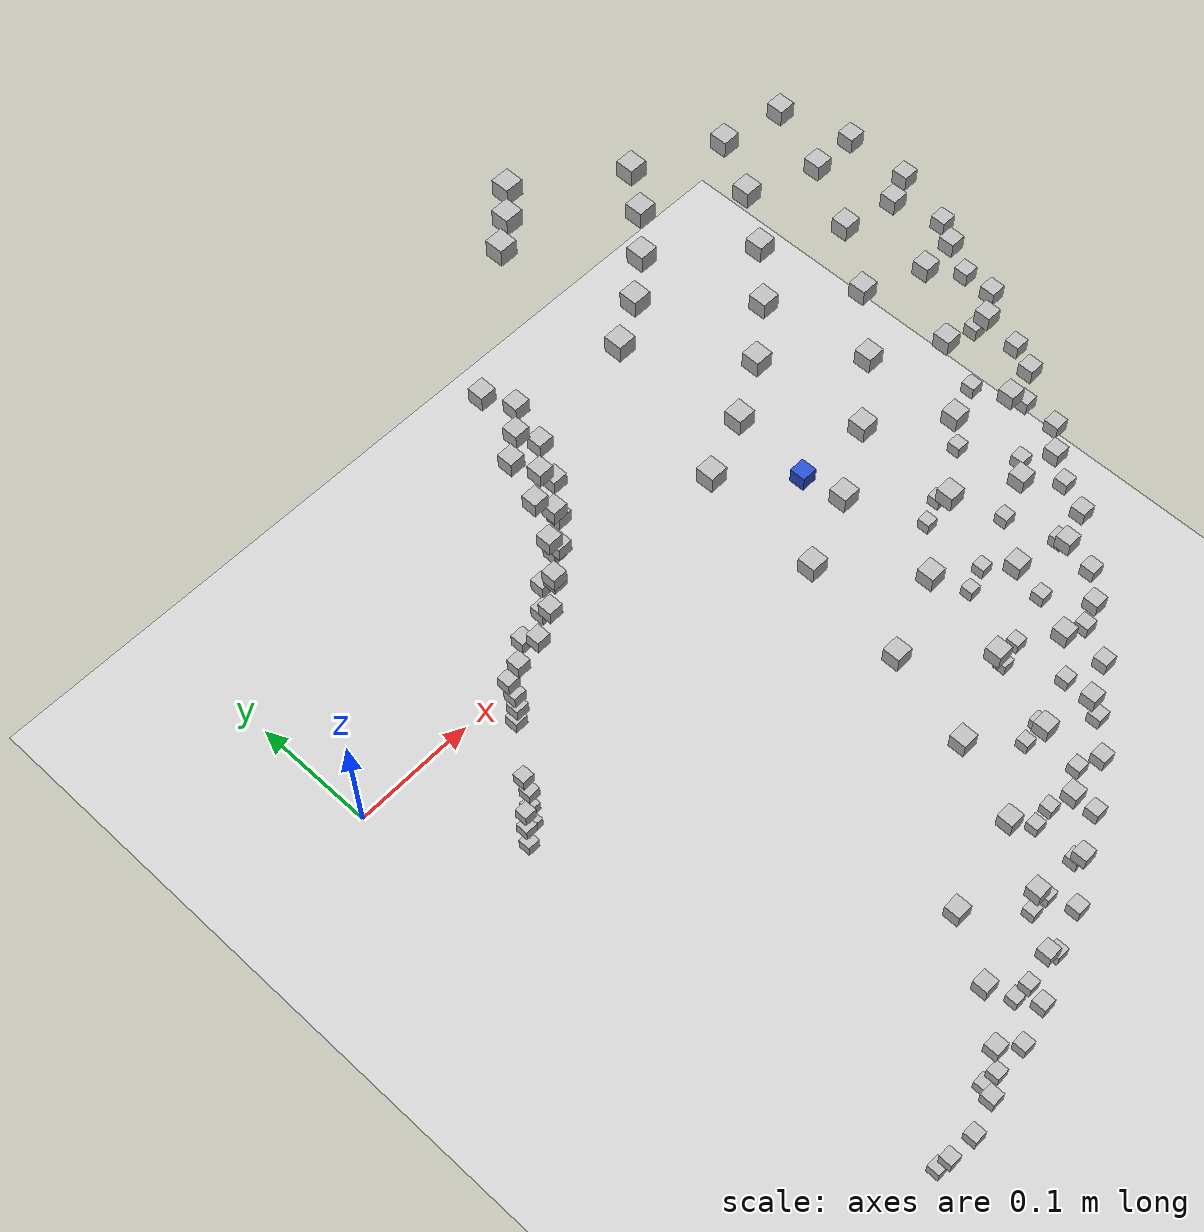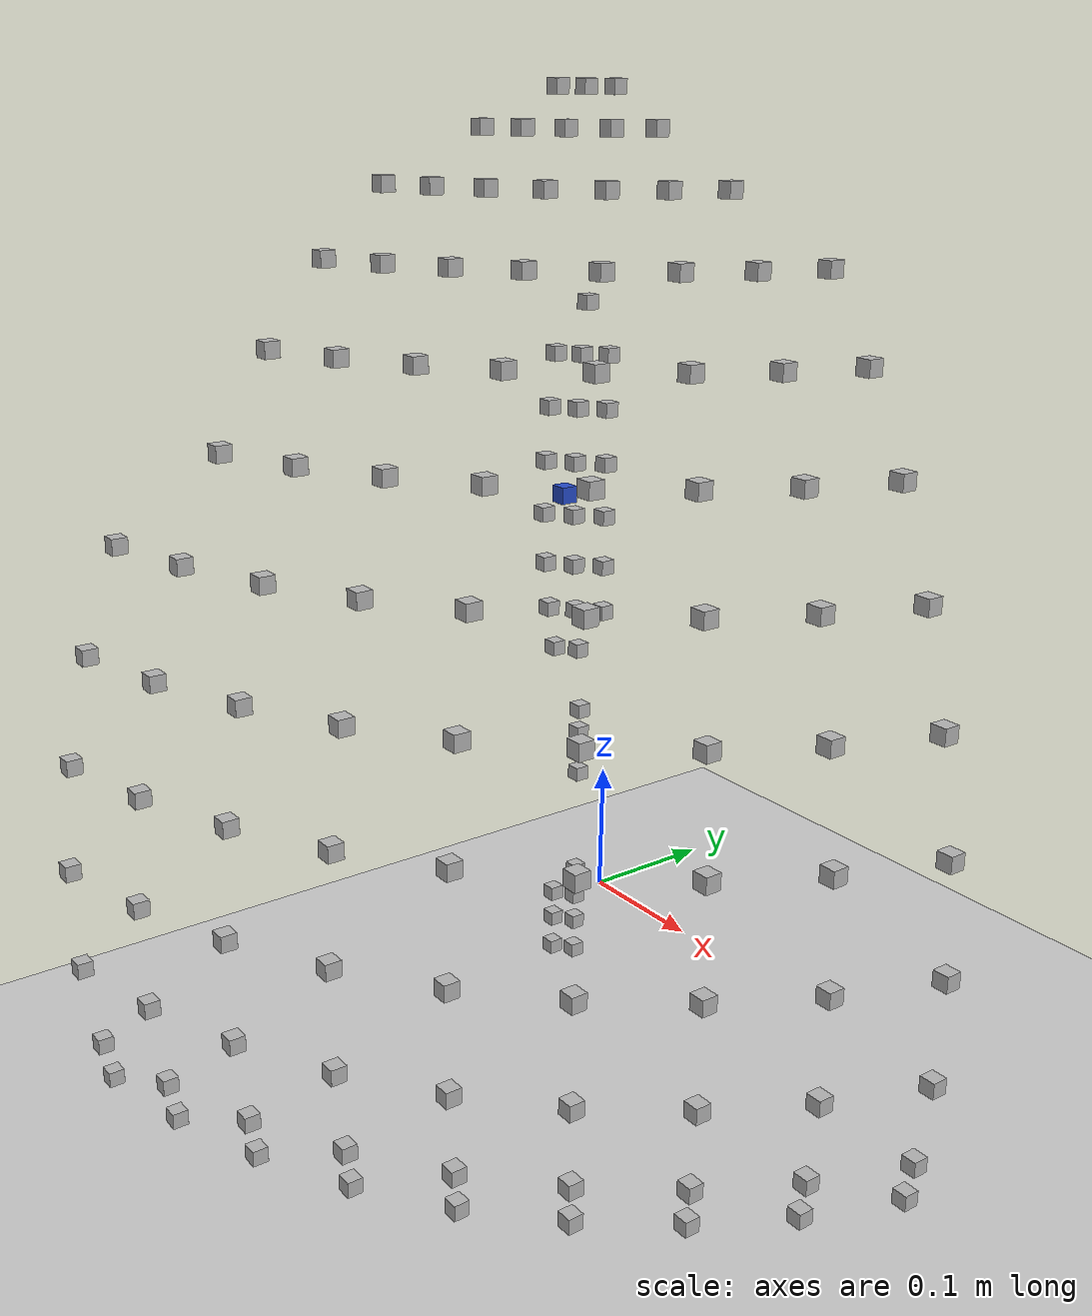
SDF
<sdf version="1.6">
 <world name="default">
  <model name="ground_plane">
   <static>1</static>
   <link name="link">
    <collision name="collision">
     <geometry><plane><normal>0 0 1</normal><size>100 100</size></plane></geometry>
     <surface>
      <contact><collide_bitmask>65535</collide_bitmask></contact>
      <friction><ode><mu>100</mu><mu2>50</mu2></ode></friction>
     </surface>
    </collision>
    <visual name="visual">
     <cast_shadows>0</cast_shadows>
     <geometry><plane><normal>0 0 1</normal><size>100 100</size></plane></geometry>
     <material>
      <script><uri>file://media/materials/scripts/gazebo.material</uri><name>Gazebo/Grey</name></script>
     </material>
    </visual>
   </link>
  </model>
  <model name="cube_blue">
   <static>1</static>
   <pose>0.2 -0.2 0.4 0.0 0.0 0.0</pose>
   <mass>1</mass>
   <link name="link1">
    <visual name="visual">
     <cast_shadows>0</cast_shadows>
     <geometry><box><size>0.01 0.01 0.01</size></box></geometry>
     <material>
      <script><uri>file://media/materials/scripts/gazebo.material</uri><name>Gazebo/Blue</name></script>
     </material>
    </visual>
   </link>
  </model>
  <model name="box_1685262135_6582217">
   <pose>0.0719161541215775 -0.4540607270147136 0.031024085780011867 0.0 0.0 0.0</pose>
   <static>1</static>
   <link name="box_1685262135_6582217_link">
    <visual name="visual"><geometry><box><size>0.01 0.01 0.01</size></box></geometry></visual>
   </link>
  </model>
  <model name="box_1685262135_658238">
   <pose>0.13440931045611512 -0.43963304505403183 0.031024085780011867 0.0 0.0 0.0</pose>
   <static>1</static>
   <link name="box_1685262135_658238_link">
    <visual name="visual"><geometry><box><size>0.01 0.01 0.01</size></box></geometry></visual>
   </link>
  </model>
  <model name="box_1685262135_6582541">
   <pose>0.19428634245094903 -0.4166484059465502 0.031024085780011867 0.0 0.0 0.0</pose>
   <static>1</static>
   <link name="box_1685262135_6582541_link">
    <visual name="visual"><geometry><box><size>0.01 0.01 0.01</size></box></geometry></visual>
   </link>
  </model>
  <model name="box_1685262135_6582701">
   <pose>0.25038181178741425 -0.38555417954785626 0.031024085780011867 0.0 0.0 0.0</pose>
   <static>1</static>
   <link name="box_1685262135_6582701_link">
    <visual name="visual"><geometry><box><size>0.01 0.01 0.01</size></box></geometry></visual>
   </link>
  </model>
  <model name="box_1685262135_6582887">
   <pose>0.301603883962527 -0.34695557960564244 0.031024085780011867 0.0 0.0 0.0</pose>
   <static>1</static>
   <link name="box_1685262135_6582887_link">
    <visual name="visual"><geometry><box><size>0.01 0.01 0.01</size></box></geometry></visual>
   </link>
  </model>
  <model name="box_1685262135_6583085">
   <pose>0.3469555796056425 -0.30160388396252696 0.031024085780011867 0.0 0.0 0.0</pose>
   <static>1</static>
   <link name="box_1685262135_6583085_link">
    <visual name="visual"><geometry><box><size>0.01 0.01 0.01</size></box></geometry></visual>
   </link>
  </model>
  <model name="box_1685262135_6583354">
   <pose>0.3855541795478563 -0.2503818117874142 0.031024085780011867 0.0 0.0 0.0</pose>
   <static>1</static>
   <link name="box_1685262135_6583354_link">
    <visual name="visual"><geometry><box><size>0.01 0.01 0.01</size></box></geometry></visual>
   </link>
  </model>
  <model name="box_1685262135_6583595">
   <pose>0.4166484059465502 -0.19428634245094903 0.031024085780011867 0.0 0.0 0.0</pose>
   <static>1</static>
   <link name="box_1685262135_6583595_link">
    <visual name="visual"><geometry><box><size>0.01 0.01 0.01</size></box></geometry></visual>
   </link>
  </model>
  <model name="box_1685262135_6583772">
   <pose>0.43963304505403183 -0.13440931045611512 0.031024085780011867 0.0 0.0 0.0</pose>
   <static>1</static>
   <link name="box_1685262135_6583772_link">
    <visual name="visual"><geometry><box><size>0.01 0.01 0.01</size></box></geometry></visual>
   </link>
  </model>
  <model name="box_1685262135_6589782">
   <pose>0.07278090152361238 -0.45952052723412273 0.05746253559996678 0.0 0.0 0.0</pose>
   <static>1</static>
   <link name="box_1685262135_6589782_link">
    <visual name="visual"><geometry><box><size>0.01 0.01 0.01</size></box></geometry></visual>
   </link>
  </model>
  <model name="box_1685262135_6589944">
   <pose>0.1360254995230351 -0.44491936129553256 0.05746253559996678 0.0 0.0 0.0</pose>
   <static>1</static>
   <link name="box_1685262135_6589944_link">
    <visual name="visual"><geometry><box><size>0.01 0.01 0.01</size></box></geometry></visual>
   </link>
  </model>
  <model name="box_1685262135_6590106">
   <pose>0.19662251590095434 -0.42165834607759733 0.05746253559996678 0.0 0.0 0.0</pose>
   <static>1</static>
   <link name="box_1685262135_6590106_link">
    <visual name="visual"><geometry><box><size>0.01 0.01 0.01</size></box></geometry></visual>
   </link>
  </model>
  <model name="box_1685262135_6590264">
   <pose>0.25339249866165847 -0.39019023078252135 0.05746253559996678 0.0 0.0 0.0</pose>
   <static>1</static>
   <link name="box_1685262135_6590264_link">
    <visual name="visual"><geometry><box><size>0.01 0.01 0.01</size></box></geometry></visual>
   </link>
  </model>
  <model name="box_1685262135_659043">
   <pose>0.30523048466560854 -0.35112750648007285 0.05746253559996678 0.0 0.0 0.0</pose>
   <static>1</static>
   <link name="box_1685262135_659043_link">
    <visual name="visual"><geometry><box><size>0.01 0.01 0.01</size></box></geometry></visual>
   </link>
  </model>
  <model name="box_1685262135_6590617">
   <pose>0.3511275064800729 -0.3052304846656085 0.05746253559996678 0.0 0.0 0.0</pose>
   <static>1</static>
   <link name="box_1685262135_6590617_link">
    <visual name="visual"><geometry><box><size>0.01 0.01 0.01</size></box></geometry></visual>
   </link>
  </model>
  <model name="box_1685262135_6590786">
   <pose>0.3901902307825214 -0.2533924986616584 0.05746253559996678 0.0 0.0 0.0</pose>
   <static>1</static>
   <link name="box_1685262135_6590786_link">
    <visual name="visual"><geometry><box><size>0.01 0.01 0.01</size></box></geometry></visual>
   </link>
  </model>
  <model name="box_1685262135_659095">
   <pose>0.42165834607759733 -0.19662251590095434 0.05746253559996678 0.0 0.0 0.0</pose>
   <static>1</static>
   <link name="box_1685262135_659095_link">
    <visual name="visual"><geometry><box><size>0.01 0.01 0.01</size></box></geometry></visual>
   </link>
  </model>
  <model name="box_1685262135_6591113">
   <pose>0.44491936129553256 -0.1360254995230351 0.05746253559996678 0.0 0.0 0.0</pose>
   <static>1</static>
   <link name="box_1685262135_6591113_link">
    <visual name="visual"><geometry><box><size>0.01 0.01 0.01</size></box></geometry></visual>
   </link>
  </model>
  <model name="box_1685262135_6597068">
   <pose>0.07431158038560051 -0.46918485321748127 0.11486971929344875 0.0 0.0 0.0</pose>
   <static>1</static>
   <link name="box_1685262135_6597068_link">
    <visual name="visual"><geometry><box><size>0.01 0.01 0.01</size></box></geometry></visual>
   </link>
  </model>
  <model name="box_1685262135_6597228">
   <pose>0.13888629613935258 -0.4542766053989651 0.11486971929344875 0.0 0.0 0.0</pose>
   <static>1</static>
   <link name="box_1685262135_6597228_link">
    <visual name="visual"><geometry><box><size>0.01 0.01 0.01</size></box></geometry></visual>
   </link>
  </model>
  <model name="box_1685262135_6597385">
   <pose>0.20075774811957245 -0.43052638018833794 0.11486971929344875 0.0 0.0 0.0</pose>
   <static>1</static>
   <link name="box_1685262135_6597385_link">
    <visual name="visual"><geometry><box><size>0.01 0.01 0.01</size></box></geometry></visual>
   </link>
  </model>
  <model name="box_1685262135_6597545">
   <pose>0.25872167889119874 -0.3983964487038438 0.11486971929344875 0.0 0.0 0.0</pose>
   <static>1</static>
   <link name="box_1685262135_6597545_link">
    <visual name="visual"><geometry><box><size>0.01 0.01 0.01</size></box></geometry></visual>
   </link>
  </model>
  <model name="box_1685262135_659771">
   <pose>0.3116498864747556 -0.3585121835145731 0.11486971929344875 0.0 0.0 0.0</pose>
   <static>1</static>
   <link name="box_1685262135_659771_link">
    <visual name="visual"><geometry><box><size>0.01 0.01 0.01</size></box></geometry></visual>
   </link>
  </model>
  <model name="box_1685262135_6597893">
   <pose>0.35851218351457315 -0.31164988647475556 0.11486971929344875 0.0 0.0 0.0</pose>
   <static>1</static>
   <link name="box_1685262135_6597893_link">
    <visual name="visual"><geometry><box><size>0.01 0.01 0.01</size></box></geometry></visual>
   </link>
  </model>
  <model name="box_1685262135_6598065">
   <pose>0.39839644870384383 -0.2587216788911987 0.11486971929344875 0.0 0.0 0.0</pose>
   <static>1</static>
   <link name="box_1685262135_6598065_link">
    <visual name="visual"><geometry><box><size>0.01 0.01 0.01</size></box></geometry></visual>
   </link>
  </model>
  <model name="box_1685262135_6598299">
   <pose>0.43052638018833794 -0.20075774811957245 0.11486971929344875 0.0 0.0 0.0</pose>
   <static>1</static>
   <link name="box_1685262135_6598299_link">
    <visual name="visual"><geometry><box><size>0.01 0.01 0.01</size></box></geometry></visual>
   </link>
  </model>
  <model name="box_1685262135_6598554">
   <pose>0.4542766053989651 -0.13888629613935258 0.11486971929344875 0.0 0.0 0.0</pose>
   <static>1</static>
   <link name="box_1685262135_6598554_link">
    <visual name="visual"><geometry><box><size>0.01 0.01 0.01</size></box></geometry></visual>
   </link>
  </model>
  <model name="box_1685262135_6604505">
   <pose>0.07470846816101515 -0.4716907040106615 0.18152491402812204 0.0 0.0 0.0</pose>
   <static>1</static>
   <link name="box_1685262135_6604505_link">
    <visual name="visual"><geometry><box><size>0.01 0.01 0.01</size></box></geometry></visual>
   </link>
  </model>
  <model name="box_1685262135_6604664">
   <pose>0.13962806845564968 -0.4567028333220446 0.18152491402812204 0.0 0.0 0.0</pose>
   <static>1</static>
   <link name="box_1685262135_6604664_link">
    <visual name="visual"><geometry><box><size>0.01 0.01 0.01</size></box></geometry></visual>
   </link>
  </model>
  <model name="box_1685262135_6604824">
   <pose>0.20182996722236882 -0.4328257614745873 0.18152491402812204 0.0 0.0 0.0</pose>
   <static>1</static>
   <link name="box_1685262135_6604824_link">
    <visual name="visual"><geometry><box><size>0.01 0.01 0.01</size></box></geometry></visual>
   </link>
  </model>
  <model name="box_1685262135_6604986">
   <pose>0.2601034752552896 -0.4005242285120337 0.18152491402812204 0.0 0.0 0.0</pose>
   <static>1</static>
   <link name="box_1685262135_6604986_link">
    <visual name="visual"><geometry><box><size>0.01 0.01 0.01</size></box></geometry></visual>
   </link>
  </model>
  <model name="box_1685262135_6605144">
   <pose>0.313314365005684 -0.3604269470310507 0.18152491402812204 0.0 0.0 0.0</pose>
   <static>1</static>
   <link name="box_1685262135_6605144_link">
    <visual name="visual"><geometry><box><size>0.01 0.01 0.01</size></box></geometry></visual>
   </link>
  </model>
  <model name="box_1685262135_66053">
   <pose>0.36042694703105077 -0.31331436500568394 0.18152491402812204 0.0 0.0 0.0</pose>
   <static>1</static>
   <link name="box_1685262135_66053_link">
    <visual name="visual"><geometry><box><size>0.01 0.01 0.01</size></box></geometry></visual>
   </link>
  </model>
  <model name="box_1685262135_6605477">
   <pose>0.40052422851203373 -0.26010347525528954 0.18152491402812204 0.0 0.0 0.0</pose>
   <static>1</static>
   <link name="box_1685262135_6605477_link">
    <visual name="visual"><geometry><box><size>0.01 0.01 0.01</size></box></geometry></visual>
   </link>
  </model>
  <model name="box_1685262135_6605644">
   <pose>0.4328257614745873 -0.20182996722236882 0.18152491402812204 0.0 0.0 0.0</pose>
   <static>1</static>
   <link name="box_1685262135_6605644_link">
    <visual name="visual"><geometry><box><size>0.01 0.01 0.01</size></box></geometry></visual>
   </link>
  </model>
  <model name="box_1685262135_6605804">
   <pose>0.4567028333220446 -0.13962806845564968 0.18152491402812204 0.0 0.0 0.0</pose>
   <static>1</static>
   <link name="box_1685262135_6605804_link">
    <visual name="visual"><geometry><box><size>0.01 0.01 0.01</size></box></geometry></visual>
   </link>
  </model>
  <model name="box_1685262135_6611705">
   <pose>0.07364907487674636 -0.46500195805747285 0.24785452819062248 0.0 0.0 0.0</pose>
   <static>1</static>
   <link name="box_1685262135_6611705_link">
    <visual name="visual"><geometry><box><size>0.01 0.01 0.01</size></box></geometry></visual>
   </link>
  </model>
  <model name="box_1685262135_6611862">
   <pose>0.13764809159815972 -0.45022662083318543 0.24785452819062248 0.0 0.0 0.0</pose>
   <static>1</static>
   <link name="box_1685262135_6611862_link">
    <visual name="visual"><geometry><box><size>0.01 0.01 0.01</size></box></geometry></visual>
   </link>
  </model>
  <model name="box_1685262135_6612024">
   <pose>0.1989679447889984 -0.4266881345595708 0.24785452819062248 0.0 0.0 0.0</pose>
   <static>1</static>
   <link name="box_1685262135_6612024_link">
    <visual name="visual"><geometry><box><size>0.01 0.01 0.01</size></box></geometry></visual>
   </link>
  </model>
  <model name="box_1685262135_6612184">
   <pose>0.256415113257202 -0.3948446490973134 0.24785452819062248 0.0 0.0 0.0</pose>
   <static>1</static>
   <link name="box_1685262135_6612184_link">
    <visual name="visual"><geometry><box><size>0.01 0.01 0.01</size></box></geometry></visual>
   </link>
  </model>
  <model name="box_1685262135_6612341">
   <pose>0.30887145321372245 -0.35531596166950846 0.24785452819062248 0.0 0.0 0.0</pose>
   <static>1</static>
   <link name="box_1685262135_6612341_link">
    <visual name="visual"><geometry><box><size>0.01 0.01 0.01</size></box></geometry></visual>
   </link>
  </model>
  <model name="box_1685262135_66125">
   <pose>0.3553159616695085 -0.3088714532137224 0.24785452819062248 0.0 0.0 0.0</pose>
   <static>1</static>
   <link name="box_1685262135_66125_link">
    <visual name="visual"><geometry><box><size>0.01 0.01 0.01</size></box></geometry></visual>
   </link>
  </model>
  <model name="box_1685262135_6612685">
   <pose>0.3948446490973135 -0.25641511325720195 0.24785452819062248 0.0 0.0 0.0</pose>
   <static>1</static>
   <link name="box_1685262135_6612685_link">
    <visual name="visual"><geometry><box><size>0.01 0.01 0.01</size></box></geometry></visual>
   </link>
  </model>
  <model name="box_1685262135_6612856">
   <pose>0.4266881345595708 -0.1989679447889984 0.24785452819062248 0.0 0.0 0.0</pose>
   <static>1</static>
   <link name="box_1685262135_6612856_link">
    <visual name="visual"><geometry><box><size>0.01 0.01 0.01</size></box></geometry></visual>
   </link>
  </model>
  <model name="box_1685262135_661302">
   <pose>0.45022662083318543 -0.13764809159815972 0.24785452819062248 0.0 0.0 0.0</pose>
   <static>1</static>
   <link name="box_1685262135_661302_link">
    <visual name="visual"><geometry><box><size>0.01 0.01 0.01</size></box></geometry></visual>
   </link>
  </model>
  <model name="box_1685262135_661932">
   <pose>0.07115333358720606 -0.4492444677104007 0.31265492137086764 0.0 0.0 0.0</pose>
   <static>1</static>
   <link name="box_1685262135_661932_link">
    <visual name="visual"><geometry><box><size>0.01 0.01 0.01</size></box></geometry></visual>
   </link>
  </model>
  <model name="box_1685262135_6619482">
   <pose>0.1329836198963377 -0.4349698213534358 0.31265492137086764 0.0 0.0 0.0</pose>
   <static>1</static>
   <link name="box_1685262135_6619482_link">
    <visual name="visual"><geometry><box><size>0.01 0.01 0.01</size></box></geometry></visual>
   </link>
  </model>
  <model name="box_1685262135_6619642">
   <pose>0.19222553131081274 -0.41222898219466475 0.31265492137086764 0.0 0.0 0.0</pose>
   <static>1</static>
   <link name="box_1685262135_6619642_link">
    <visual name="visual"><geometry><box><size>0.01 0.01 0.01</size></box></geometry></visual>
   </link>
  </model>
  <model name="box_1685262135_6619804">
   <pose>0.24772599141162394 -0.3814645748009919 0.31265492137086764 0.0 0.0 0.0</pose>
   <static>1</static>
   <link name="box_1685262135_6619804_link">
    <visual name="visual"><geometry><box><size>0.01 0.01 0.01</size></box></geometry></visual>
   </link>
  </model>
  <model name="box_1685262135_6619966">
   <pose>0.2984047468737465 -0.3432753933683403 0.31265492137086764 0.0 0.0 0.0</pose>
   <static>1</static>
   <link name="box_1685262135_6619966_link">
    <visual name="visual"><geometry><box><size>0.01 0.01 0.01</size></box></geometry></visual>
   </link>
  </model>
  <model name="box_1685262135_6620126">
   <pose>0.34327539336834034 -0.29840474687374646 0.31265492137086764 0.0 0.0 0.0</pose>
   <static>1</static>
   <link name="box_1685262135_6620126_link">
    <visual name="visual"><geometry><box><size>0.01 0.01 0.01</size></box></geometry></visual>
   </link>
  </model>
  <model name="box_1685262135_6620288">
   <pose>0.3814645748009919 -0.24772599141162388 0.31265492137086764 0.0 0.0 0.0</pose>
   <static>1</static>
   <link name="box_1685262135_6620288_link">
    <visual name="visual"><geometry><box><size>0.01 0.01 0.01</size></box></geometry></visual>
   </link>
  </model>
  <model name="box_1685262135_6620467">
   <pose>0.41222898219466475 -0.19222553131081274 0.31265492137086764 0.0 0.0 0.0</pose>
   <static>1</static>
   <link name="box_1685262135_6620467_link">
    <visual name="visual"><geometry><box><size>0.01 0.01 0.01</size></box></geometry></visual>
   </link>
  </model>
  <model name="box_1685262135_6620634">
   <pose>0.4349698213534358 -0.1329836198963377 0.31265492137086764 0.0 0.0 0.0</pose>
   <static>1</static>
   <link name="box_1685262135_6620634_link">
    <visual name="visual"><geometry><box><size>0.01 0.01 0.01</size></box></geometry></visual>
   </link>
  </model>
  <model name="box_1685262135_6626637">
   <pose>0.06727676038335487 -0.4247687477728366 0.37450685986133164 0.0 0.0 0.0</pose>
   <static>1</static>
   <link name="box_1685262135_6626637_link">
    <visual name="visual"><geometry><box><size>0.01 0.01 0.01</size></box></geometry></visual>
   </link>
  </model>
  <model name="box_1685262135_66268">
   <pose>0.12573841139448375 -0.41127181215368325 0.37450685986133164 0.0 0.0 0.0</pose>
   <static>1</static>
   <link name="box_1685262135_66268_link">
    <visual name="visual"><geometry><box><size>0.01 0.01 0.01</size></box></geometry></visual>
   </link>
  </model>
  <model name="box_1685262135_6626956">
   <pose>0.1817527072531421 -0.38976993852571107 0.37450685986133164 0.0 0.0 0.0</pose>
   <static>1</static>
   <link name="box_1685262135_6626956_link">
    <visual name="visual"><geometry><box><size>0.01 0.01 0.01</size></box></geometry></visual>
   </link>
  </model>
  <model name="box_1685262135_6627116">
   <pose>0.23422939340575838 -0.3606816364010697 0.37450685986133164 0.0 0.0 0.0</pose>
   <static>1</static>
   <link name="box_1685262135_6627116_link">
    <visual name="visual"><geometry><box><size>0.01 0.01 0.01</size></box></geometry></visual>
   </link>
  </model>
  <model name="box_1685262135_6627276">
   <pose>0.2821470708477175 -0.32457307649316214 0.37450685986133164 0.0 0.0 0.0</pose>
   <static>1</static>
   <link name="box_1685262135_6627276_link">
    <visual name="visual"><geometry><box><size>0.01 0.01 0.01</size></box></geometry></visual>
   </link>
  </model>
  <model name="box_1685262135_6627438">
   <pose>0.3245730764931622 -0.28214707084771745 0.37450685986133164 0.0 0.0 0.0</pose>
   <static>1</static>
   <link name="box_1685262135_6627438_link">
    <visual name="visual"><geometry><box><size>0.01 0.01 0.01</size></box></geometry></visual>
   </link>
  </model>
  <model name="box_1685262135_66276">
   <pose>0.36068163640106976 -0.23422939340575832 0.37450685986133164 0.0 0.0 0.0</pose>
   <static>1</static>
   <link name="box_1685262135_66276_link">
    <visual name="visual"><geometry><box><size>0.01 0.01 0.01</size></box></geometry></visual>
   </link>
  </model>
  <model name="box_1685262135_6627784">
   <pose>0.38976993852571107 -0.1817527072531421 0.37450685986133164 0.0 0.0 0.0</pose>
   <static>1</static>
   <link name="box_1685262135_6627784_link">
    <visual name="visual"><geometry><box><size>0.01 0.01 0.01</size></box></geometry></visual>
   </link>
  </model>
  <model name="box_1685262135_6627953">
   <pose>0.41127181215368325 -0.12573841139448375 0.37450685986133164 0.0 0.0 0.0</pose>
   <static>1</static>
   <link name="box_1685262135_6627953_link">
    <visual name="visual"><geometry><box><size>0.01 0.01 0.01</size></box></geometry></visual>
   </link>
  </model>
  <model name="box_1685262135_6634665">
   <pose>0.06435581210374604 -0.09909926027639296 0.005648136022940203 0.0 0.0 0.0</pose>
   <static>1</static>
   <link name="box_1685262135_6634665_link">
    <visual name="visual"><geometry><box><size>0.01 0.01 0.01</size></box></geometry></visual>
   </link>
  </model>
  <model name="box_1685262135_6634827">
   <pose>0.0775214571197862 -0.08917823515234023 0.005648136022940203 0.0 0.0 0.0</pose>
   <static>1</static>
   <link name="box_1685262135_6634827_link">
    <visual name="visual"><geometry><box><size>0.01 0.01 0.01</size></box></geometry></visual>
   </link>
  </model>
  <model name="box_1685262135_6641598">
   <pose>0.11602909681836068 -0.3795140751486849 0.4324042100445494 0.0 0.0 0.0</pose>
   <static>1</static>
   <link name="box_1685262135_6641598_link">
    <visual name="visual"><geometry><box><size>0.01 0.01 0.01</size></box></geometry></visual>
   </link>
  </model>
  <model name="box_1685262135_664176">
   <pose>0.16771806032058048 -0.3596725410519245 0.4324042100445494 0.0 0.0 0.0</pose>
   <static>1</static>
   <link name="box_1685262135_664176_link">
    <visual name="visual"><geometry><box><size>0.01 0.01 0.01</size></box></geometry></visual>
   </link>
  </model>
  <model name="box_1685262135_6641917">
   <pose>0.21614258255512625 -0.3328303900650399 0.4324042100445494 0.0 0.0 0.0</pose>
   <static>1</static>
   <link name="box_1685262135_6641917_link">
    <visual name="visual"><geometry><box><size>0.01 0.01 0.01</size></box></geometry></visual>
   </link>
  </model>
  <model name="box_1685262135_6642077">
   <pose>0.26036013527878 -0.29951007412449676 0.4324042100445494 0.0 0.0 0.0</pose>
   <static>1</static>
   <link name="box_1685262135_6642077_link">
    <visual name="visual"><geometry><box><size>0.01 0.01 0.01</size></box></geometry></visual>
   </link>
  </model>
  <model name="box_1685262135_6642234">
   <pose>0.2995100741244968 -0.26036013527878 0.4324042100445494 0.0 0.0 0.0</pose>
   <static>1</static>
   <link name="box_1685262135_6642234_link">
    <visual name="visual"><geometry><box><size>0.01 0.01 0.01</size></box></geometry></visual>
   </link>
  </model>
  <model name="box_1685262135_6642394">
   <pose>0.3328303900650399 -0.2161425825551262 0.4324042100445494 0.0 0.0 0.0</pose>
   <static>1</static>
   <link name="box_1685262135_6642394_link">
    <visual name="visual"><geometry><box><size>0.01 0.01 0.01</size></box></geometry></visual>
   </link>
  </model>
  <model name="box_1685262135_664255">
   <pose>0.3596725410519245 -0.16771806032058048 0.4324042100445494 0.0 0.0 0.0</pose>
   <static>1</static>
   <link name="box_1685262135_664255_link">
    <visual name="visual"><geometry><box><size>0.01 0.01 0.01</size></box></geometry></visual>
   </link>
  </model>
  <model name="box_1685262135_6642733">
   <pose>0.3795140751486849 -0.11602909681836068 0.4324042100445494 0.0 0.0 0.0</pose>
   <static>1</static>
   <link name="box_1685262135_6642733_link">
    <visual name="visual"><geometry><box><size>0.01 0.01 0.01</size></box></geometry></visual>
   </link>
  </model>
  <model name="box_1685262135_6649344">
   <pose>0.06402691286120808 -0.0985927998561836 0.02920890265866033 0.0 0.0 0.0</pose>
   <static>1</static>
   <link name="box_1685262135_6649344_link">
    <visual name="visual"><geometry><box><size>0.01 0.01 0.01</size></box></geometry></visual>
   </link>
  </model>
  <model name="box_1685262135_6649508">
   <pose>0.07712527303487349 -0.08872247749761289 0.02920890265866033 0.0 0.0 0.0</pose>
   <static>1</static>
   <link name="box_1685262135_6649508_link">
    <visual name="visual"><geometry><box><size>0.01 0.01 0.01</size></box></geometry></visual>
   </link>
  </model>
  <model name="box_1685262135_6656332">
   <pose>0.1040426169060804 -0.34030806594119534 0.4851615351605009 0.0 0.0 0.0</pose>
   <static>1</static>
   <link name="box_1685262135_6656332_link">
    <visual name="visual"><geometry><box><size>0.01 0.01 0.01</size></box></geometry></visual>
   </link>
  </model>
  <model name="box_1685262135_6656497">
   <pose>0.15039181012916186 -0.32251627760994717 0.4851615351605009 0.0 0.0 0.0</pose>
   <static>1</static>
   <link name="box_1685262135_6656497_link">
    <visual name="visual"><geometry><box><size>0.01 0.01 0.01</size></box></geometry></visual>
   </link>
  </model>
  <model name="box_1685262135_6656656">
   <pose>0.19381379783622776 -0.2984470767918497 0.4851615351605009 0.0 0.0 0.0</pose>
   <static>1</static>
   <link name="box_1685262135_6656656_link">
    <visual name="visual"><geometry><box><size>0.01 0.01 0.01</size></box></geometry></visual>
   </link>
  </model>
  <model name="box_1685262135_6656816">
   <pose>0.23346342042833887 -0.2685689431025171 0.4851615351605009 0.0 0.0 0.0</pose>
   <static>1</static>
   <link name="box_1685262135_6656816_link">
    <visual name="visual"><geometry><box><size>0.01 0.01 0.01</size></box></geometry></visual>
   </link>
  </model>
  <model name="box_1685262135_6656976">
   <pose>0.2685689431025171 -0.2334634204283388 0.4851615351605009 0.0 0.0 0.0</pose>
   <static>1</static>
   <link name="box_1685262135_6656976_link">
    <visual name="visual"><geometry><box><size>0.01 0.01 0.01</size></box></geometry></visual>
   </link>
  </model>
  <model name="box_1685262135_6657135">
   <pose>0.2984470767918497 -0.19381379783622774 0.4851615351605009 0.0 0.0 0.0</pose>
   <static>1</static>
   <link name="box_1685262135_6657135_link">
    <visual name="visual"><geometry><box><size>0.01 0.01 0.01</size></box></geometry></visual>
   </link>
  </model>
  <model name="box_1685262135_6657295">
   <pose>0.32251627760994717 -0.15039181012916186 0.4851615351605009 0.0 0.0 0.0</pose>
   <static>1</static>
   <link name="box_1685262135_6657295_link">
    <visual name="visual"><geometry><box><size>0.01 0.01 0.01</size></box></geometry></visual>
   </link>
  </model>
  <model name="box_1685262135_6657457">
   <pose>0.34030806594119534 -0.1040426169060804 0.4851615351605009 0.0 0.0 0.0</pose>
   <static>1</static>
   <link name="box_1685262135_6657457_link">
    <visual name="visual"><geometry><box><size>0.01 0.01 0.01</size></box></geometry></visual>
   </link>
  </model>
  <model name="box_1685262135_6664152">
   <pose>0.06417493924903353 -0.09882074050451604 0.05028140928145608 0.0 0.0 0.0</pose>
   <static>1</static>
   <link name="box_1685262135_6664152_link">
    <visual name="visual"><geometry><box><size>0.01 0.01 0.01</size></box></geometry></visual>
   </link>
  </model>
  <model name="box_1685262135_666431">
   <pose>0.07730358204693147 -0.08892759855180718 0.05028140928145608 0.0 0.0 0.0</pose>
   <static>1</static>
   <link name="box_1685262135_666431_link">
    <visual name="visual"><geometry><box><size>0.01 0.01 0.01</size></box></geometry></visual>
   </link>
  </model>
  <model name="box_1685262135_6671073">
   <pose>0.09002178245894239 -0.29444798287644136 0.5316791207351375 0.0 0.0 0.0</pose>
   <static>1</static>
   <link name="box_1685262135_6671073_link">
    <visual name="visual"><geometry><box><size>0.01 0.01 0.01</size></box></geometry></visual>
   </link>
  </model>
  <model name="box_1685262135_6671257">
   <pose>0.13012493550864124 -0.27905382472914114 0.5316791207351375 0.0 0.0 0.0</pose>
   <static>1</static>
   <link name="box_1685262135_6671257_link">
    <visual name="visual"><geometry><box><size>0.01 0.01 0.01</size></box></geometry></visual>
   </link>
  </model>
  <model name="box_1685262135_6671429">
   <pose>0.16769535470358474 -0.25822820130250906 0.5316791207351375 0.0 0.0 0.0</pose>
   <static>1</static>
   <link name="box_1685262135_6671429_link">
    <visual name="visual"><geometry><box><size>0.01 0.01 0.01</size></box></geometry></visual>
   </link>
  </model>
  <model name="box_1685262135_6671593">
   <pose>0.20200177456986163 -0.23237645966774917 0.5316791207351375 0.0 0.0 0.0</pose>
   <static>1</static>
   <link name="box_1685262135_6671593_link">
    <visual name="visual"><geometry><box><size>0.01 0.01 0.01</size></box></geometry></visual>
   </link>
  </model>
  <model name="box_1685262135_6671755">
   <pose>0.2323764596677492 -0.2020017745698616 0.5316791207351375 0.0 0.0 0.0</pose>
   <static>1</static>
   <link name="box_1685262135_6671755_link">
    <visual name="visual"><geometry><box><size>0.01 0.01 0.01</size></box></geometry></visual>
   </link>
  </model>
  <model name="box_1685262135_6671915">
   <pose>0.2582282013025091 -0.1676953547035847 0.5316791207351375 0.0 0.0 0.0</pose>
   <static>1</static>
   <link name="box_1685262135_6671915_link">
    <visual name="visual"><geometry><box><size>0.01 0.01 0.01</size></box></geometry></visual>
   </link>
  </model>
  <model name="box_1685262135_6672075">
   <pose>0.27905382472914114 -0.13012493550864124 0.5316791207351375 0.0 0.0 0.0</pose>
   <static>1</static>
   <link name="box_1685262135_6672075_link">
    <visual name="visual"><geometry><box><size>0.01 0.01 0.01</size></box></geometry></visual>
   </link>
  </model>
  <model name="box_1685262135_6672235">
   <pose>0.29444798287644136 -0.09002178245894239 0.5316791207351375 0.0 0.0 0.0</pose>
   <static>1</static>
   <link name="box_1685262135_6672235_link">
    <visual name="visual"><geometry><box><size>0.01 0.01 0.01</size></box></geometry></visual>
   </link>
  </model>
  <model name="box_1685262135_6679025">
   <pose>0.07538024200183778 -0.08671504892758837 0.06994559093984248 0.0 0.0 0.0</pose>
   <static>1</static>
   <link name="box_1685262135_6679025_link">
    <visual name="visual"><geometry><box><size>0.01 0.01 0.01</size></box></geometry></visual>
   </link>
  </model>
  <model name="box_1685262135_6685817">
   <pose>0.07425594920736132 -0.24288026590292308 0.5710245451470004 0.0 0.0 0.0</pose>
   <static>1</static>
   <link name="box_1685262135_6685817_link">
    <visual name="visual"><geometry><box><size>0.01 0.01 0.01</size></box></geometry></visual>
   </link>
  </model>
  <model name="box_1685262135_6685977">
   <pose>0.10733569518186088 -0.23018214113520513 0.5710245451470004 0.0 0.0 0.0</pose>
   <static>1</static>
   <link name="box_1685262135_6685977_link">
    <visual name="visual"><geometry><box><size>0.01 0.01 0.01</size></box></geometry></visual>
   </link>
  </model>
  <model name="box_1685262135_6686158">
   <pose>0.13832627394218922 -0.21300378281859522 0.5710245451470004 0.0 0.0 0.0</pose>
   <static>1</static>
   <link name="box_1685262135_6686158_link">
    <visual name="visual"><geometry><box><size>0.01 0.01 0.01</size></box></geometry></visual>
   </link>
  </model>
  <model name="box_1685262135_6686325">
   <pose>0.1666244891240373 -0.19167954815763322 0.5710245451470004 0.0 0.0 0.0</pose>
   <static>1</static>
   <link name="box_1685262135_6686325_link">
    <visual name="visual"><geometry><box><size>0.01 0.01 0.01</size></box></geometry></visual>
   </link>
  </model>
  <model name="box_1685262135_6686485">
   <pose>0.19167954815763324 -0.16662448912403727 0.5710245451470004 0.0 0.0 0.0</pose>
   <static>1</static>
   <link name="box_1685262135_6686485_link">
    <visual name="visual"><geometry><box><size>0.01 0.01 0.01</size></box></geometry></visual>
   </link>
  </model>
  <model name="box_1685262135_6686647">
   <pose>0.21300378281859525 -0.1383262739421892 0.5710245451470004 0.0 0.0 0.0</pose>
   <static>1</static>
   <link name="box_1685262135_6686647_link">
    <visual name="visual"><geometry><box><size>0.01 0.01 0.01</size></box></geometry></visual>
   </link>
  </model>
  <model name="box_1685262135_6686807">
   <pose>0.23018214113520513 -0.10733569518186088 0.5710245451470004 0.0 0.0 0.0</pose>
   <static>1</static>
   <link name="box_1685262135_6686807_link">
    <visual name="visual"><geometry><box><size>0.01 0.01 0.01</size></box></geometry></visual>
   </link>
  </model>
  <model name="box_1685262135_6703703">
   <pose>0.08240357386436908 -0.1767150344268601 0.6025204345093003 0.0 0.0 0.0</pose>
   <static>1</static>
   <link name="box_1685262135_6703703_link">
    <visual name="visual"><geometry><box><size>0.01 0.01 0.01</size></box></geometry></visual>
   </link>
  </model>
  <model name="box_1685262135_670388">
   <pose>0.10619560727552298 -0.1635268949545908 0.6025204345093003 0.0 0.0 0.0</pose>
   <static>1</static>
   <link name="box_1685262135_670388_link">
    <visual name="visual"><geometry><box><size>0.01 0.01 0.01</size></box></geometry></visual>
   </link>
  </model>
  <model name="box_1685262135_6704082">
   <pose>0.12792066398677165 -0.14715589048111646 0.6025204345093003 0.0 0.0 0.0</pose>
   <static>1</static>
   <link name="box_1685262135_6704082_link">
    <visual name="visual"><geometry><box><size>0.01 0.01 0.01</size></box></geometry></visual>
   </link>
  </model>
  <model name="box_1685262135_6704257">
   <pose>0.1471558904811165 -0.12792066398677163 0.6025204345093003 0.0 0.0 0.0</pose>
   <static>1</static>
   <link name="box_1685262135_6704257_link">
    <visual name="visual"><geometry><box><size>0.01 0.01 0.01</size></box></geometry></visual>
   </link>
  </model>
  <model name="box_1685262135_6704423">
   <pose>0.1635268949545908 -0.10619560727552295 0.6025204345093003 0.0 0.0 0.0</pose>
   <static>1</static>
   <link name="box_1685262135_6704423_link">
    <visual name="visual"><geometry><box><size>0.01 0.01 0.01</size></box></geometry></visual>
   </link>
  </model>
  <model name="box_1685262135_6719573">
   <pose>0.07202969089788021 -0.11091599736803988 0.6254485040649695 0.0 0.0 0.0</pose>
   <static>1</static>
   <link name="box_1685262135_6719573_link">
    <visual name="visual"><geometry><box><size>0.01 0.01 0.01</size></box></geometry></visual>
   </link>
  </model>
  <model name="box_1685262135_6719744">
   <pose>0.08676522619728466 -0.09981197506274096 0.6254485040649695 0.0 0.0 0.0</pose>
   <static>1</static>
   <link name="box_1685262135_6719744_link">
    <visual name="visual"><geometry><box><size>0.01 0.01 0.01</size></box></geometry></visual>
   </link>
  </model>
  <model name="box_1685262135_6719935">
   <pose>0.09981197506274098 -0.08676522619728465 0.6254485040649695 0.0 0.0 0.0</pose>
   <static>1</static>
   <link name="box_1685262135_6719935_link">
    <visual name="visual"><geometry><box><size>0.01 0.01 0.01</size></box></geometry></visual>
   </link>
  </model>
  <model name="box_1685262135_6758537">
   <pose>0.07469994175993482 -0.0859324530218784 0.14825398363050718 0.0 0.0 0.0</pose>
   <static>1</static>
   <link name="box_1685262135_6758537_link">
    <visual name="visual"><geometry><box><size>0.01 0.01 0.01</size></box></geometry></visual>
   </link>
  </model>
  <model name="box_1685262135_6766915">
   <pose>0.07561514461444176 -0.08698527347190167 0.16428489958480497 0.0 0.0 0.0</pose>
   <static>1</static>
   <link name="box_1685262135_6766915_link">
    <visual name="visual"><geometry><box><size>0.01 0.01 0.01</size></box></geometry></visual>
   </link>
  </model>
  <model name="box_1685262135_677453">
   <pose>0.07506518785596479 -0.0863526205916121 0.18035913689155542 0.0 0.0 0.0</pose>
   <static>1</static>
   <link name="box_1685262135_677453_link">
    <visual name="visual"><geometry><box><size>0.01 0.01 0.01</size></box></geometry></visual>
   </link>
  </model>
  <model name="box_1685262135_6781924">
   <pose>0.07305116703963087 -0.08403575467301608 0.19617448160834577 0.0 0.0 0.0</pose>
   <static>1</static>
   <link name="box_1685262135_6781924_link">
    <visual name="visual"><geometry><box><size>0.01 0.01 0.01</size></box></geometry></visual>
   </link>
  </model>
  <model name="box_1685262135_680408">
   <pose>0.06658848413789524 -0.10253727371746796 0.24636117300793503 0.0 0.0 0.0</pose>
   <static>1</static>
   <link name="box_1685262135_680408_link">
    <visual name="visual"><geometry><box><size>0.01 0.01 0.01</size></box></geometry></visual>
   </link>
  </model>
  <model name="box_1685262135_6804242">
   <pose>0.08021087993491323 -0.09227206219252176 0.24636117300793503 0.0 0.0 0.0</pose>
   <static>1</static>
   <link name="box_1685262135_6804242_link">
    <visual name="visual"><geometry><box><size>0.01 0.01 0.01</size></box></geometry></visual>
   </link>
  </model>
  <model name="box_1685262135_6811297">
   <pose>0.0738419633914989 -0.11370665228584818 0.2798396861917631 0.0 0.0 0.0</pose>
   <static>1</static>
   <link name="box_1685262135_6811297_link">
    <visual name="visual"><geometry><box><size>0.01 0.01 0.01</size></box></geometry></visual>
   </link>
  </model>
  <model name="box_1685262135_6811466">
   <pose>0.08894824587819475 -0.10232325193600163 0.2798396861917631 0.0 0.0 0.0</pose>
   <static>1</static>
   <link name="box_1685262135_6811466_link">
    <visual name="visual"><geometry><box><size>0.01 0.01 0.01</size></box></geometry></visual>
   </link>
  </model>
  <model name="box_1685262135_6811633">
   <pose>0.10232325193600164 -0.08894824587819473 0.2798396861917631 0.0 0.0 0.0</pose>
   <static>1</static>
   <link name="box_1685262135_6811633_link">
    <visual name="visual"><geometry><box><size>0.01 0.01 0.01</size></box></geometry></visual>
   </link>
  </model>
  <model name="box_1685262135_6819053">
   <pose>0.07847442562817411 -0.12084001858029846 0.314821790288947 0.0 0.0 0.0</pose>
   <static>1</static>
   <link name="box_1685262135_6819053_link">
    <visual name="visual"><geometry><box><size>0.01 0.01 0.01</size></box></geometry></visual>
   </link>
  </model>
  <model name="box_1685262135_681921">
   <pose>0.09452839801830801 -0.10874248266547462 0.314821790288947 0.0 0.0 0.0</pose>
   <static>1</static>
   <link name="box_1685262135_681921_link">
    <visual name="visual"><geometry><box><size>0.01 0.01 0.01</size></box></geometry></visual>
   </link>
  </model>
  <model name="box_1685262135_681937">
   <pose>0.10874248266547464 -0.094528398018308 0.314821790288947 0.0 0.0 0.0</pose>
   <static>1</static>
   <link name="box_1685262135_681937_link">
    <visual name="visual"><geometry><box><size>0.01 0.01 0.01</size></box></geometry></visual>
   </link>
  </model>
  <model name="box_1685262135_6826227">
   <pose>0.08041189702685088 -0.12382346290551366 0.3506667056619606 0.0 0.0 0.0</pose>
   <static>1</static>
   <link name="box_1685262135_6826227_link">
    <visual name="visual"><geometry><box><size>0.01 0.01 0.01</size></box></geometry></visual>
   </link>
  </model>
  <model name="box_1685262135_682639">
   <pose>0.09686222927679959 -0.11142724841302819 0.3506667056619606 0.0 0.0 0.0</pose>
   <static>1</static>
   <link name="box_1685262135_682639_link">
    <visual name="visual"><geometry><box><size>0.01 0.01 0.01</size></box></geometry></visual>
   </link>
  </model>
  <model name="box_1685262135_6826546">
   <pose>0.11142724841302822 -0.09686222927679958 0.3506667056619606 0.0 0.0 0.0</pose>
   <static>1</static>
   <link name="box_1685262135_6826546_link">
    <visual name="visual"><geometry><box><size>0.01 0.01 0.01</size></box></geometry></visual>
   </link>
  </model>
  <model name="box_1685262135_6833496">
   <pose>0.0796094519561196 -0.12258780585570885 0.38661397693110494 0.0 0.0 0.0</pose>
   <static>1</static>
   <link name="box_1685262135_6833496_link">
    <visual name="visual"><geometry><box><size>0.01 0.01 0.01</size></box></geometry></visual>
   </link>
  </model>
  <model name="box_1685262135_6833665">
   <pose>0.09589562332299084 -0.11031529546153487 0.38661397693110494 0.0 0.0 0.0</pose>
   <static>1</static>
   <link name="box_1685262135_6833665_link">
    <visual name="visual"><geometry><box><size>0.01 0.01 0.01</size></box></geometry></visual>
   </link>
  </model>
  <model name="box_1685262135_683383">
   <pose>0.11031529546153489 -0.09589562332299083 0.38661397693110494 0.0 0.0 0.0</pose>
   <static>1</static>
   <link name="box_1685262135_683383_link">
    <visual name="visual"><geometry><box><size>0.01 0.01 0.01</size></box></geometry></visual>
   </link>
  </model>
  <model name="box_1685262135_6840732">
   <pose>0.0760797475059826 -0.11715253764032248 0.42204584917069304 0.0 0.0 0.0</pose>
   <static>1</static>
   <link name="box_1685262135_6840732_link">
    <visual name="visual"><geometry><box><size>0.01 0.01 0.01</size></box></geometry></visual>
   </link>
  </model>
  <model name="box_1685262135_6840937">
   <pose>0.09164382658184016 -0.10542416281658988 0.42204584917069304 0.0 0.0 0.0</pose>
   <static>1</static>
   <link name="box_1685262135_6840937_link">
    <visual name="visual"><geometry><box><size>0.01 0.01 0.01</size></box></geometry></visual>
   </link>
  </model>
  <model name="box_1685262135_6841164">
   <pose>0.1054241628165899 -0.09164382658184014 0.42204584917069304 0.0 0.0 0.0</pose>
   <static>1</static>
   <link name="box_1685262135_6841164_link">
    <visual name="visual"><geometry><box><size>0.01 0.01 0.01</size></box></geometry></visual>
   </link>
  </model>
  <model name="box_1685262135_6849432">
   <pose>0.06989498934020652 -0.10762884523117773 0.45627229759588134 0.0 0.0 0.0</pose>
   <static>1</static>
   <link name="box_1685262135_6849432_link">
    <visual name="visual"><geometry><box><size>0.01 0.01 0.01</size></box></geometry></visual>
   </link>
  </model>
  <model name="box_1685262135_6849618">
   <pose>0.0841938162522129 -0.0968539062999165 0.45627229759588134 0.0 0.0 0.0</pose>
   <static>1</static>
   <link name="box_1685262135_6849618_link">
    <visual name="visual"><geometry><box><size>0.01 0.01 0.01</size></box></geometry></visual>
   </link>
  </model>
  <model name="box_1685262135_6849785">
   <pose>0.09685390629991651 -0.08419381625221288 0.45627229759588134 0.0 0.0 0.0</pose>
   <static>1</static>
   <link name="box_1685262135_6849785_link">
    <visual name="visual"><geometry><box><size>0.01 0.01 0.01</size></box></geometry></visual>
   </link>
  </model>
  <model name="box_1685262135_6856863">
   <pose>0.07367953394525192 -0.08475860810938576 0.4885508417419748 0.0 0.0 0.0</pose>
   <static>1</static>
   <link name="box_1685262135_6856863_link">
    <visual name="visual"><geometry><box><size>0.01 0.01 0.01</size></box></geometry></visual>
   </link>
  </model>
 </world>
</sdf>
